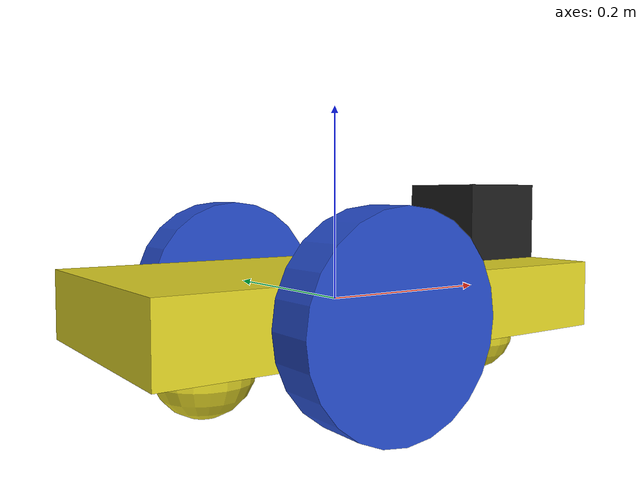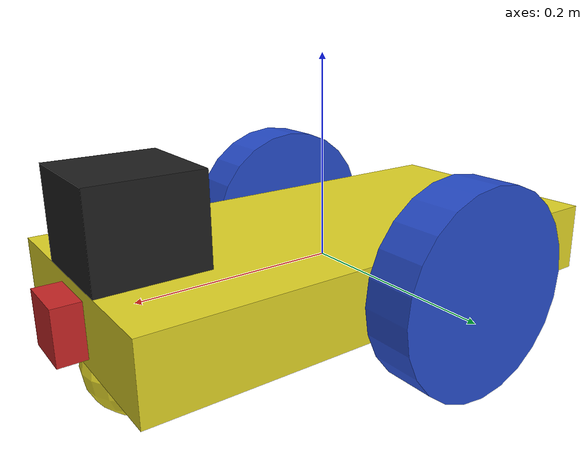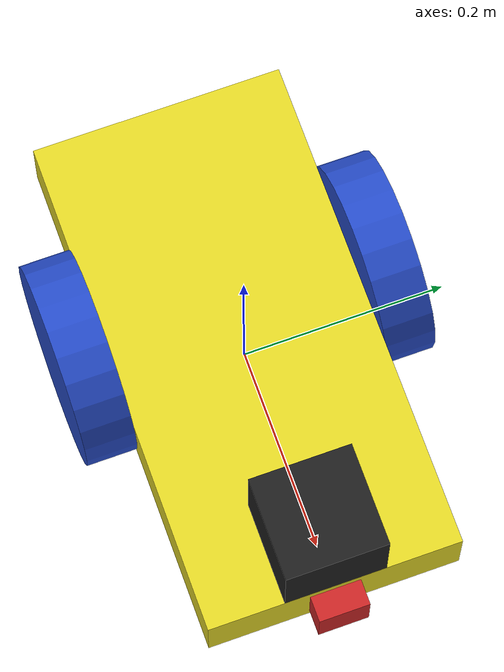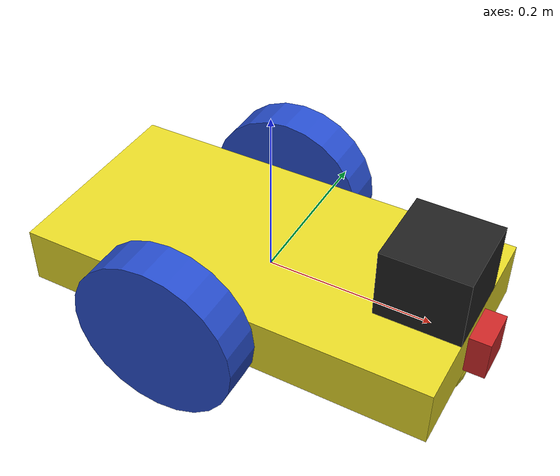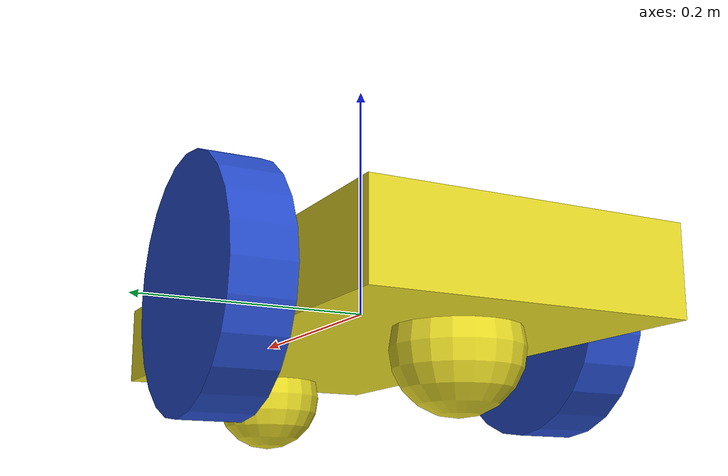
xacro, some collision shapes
<?xml version="1.0" ?>

<robot name="my_robot" xmlns:xacro="https://www.ros.org/wiki/xacro" >
  <!--Import Plugins-->
  <xacro:include filename="$(find my_robot)/urdf/my_robot.gazebo" />

  <!--Link (robot_footprint)-->
  <link name="robot_footprint"></link>

  <!--Joint (robot_footprint)-->
  <joint name="robot_footprint_joint" type="fixed">
    <origin xyz="0 0 0" rpy="0 0 0" />
    <parent link="robot_footprint"/>
    <child link="chassis" />
  </joint>

  <!--Link (chasiss)-->
  <link name="chassis">
    <pose>0 0 0.1 0 0 0</pose>

    <inertial>
      <mass value="15.0"/>
      <origin xyz="0 0 0" rpy="0 0 0"/>
      <inertia
          ixx="0.08425" ixy="0" ixz="0"
          iyy="0.318625" iyz="0"
          izz="0.390625"
      />
    </inertial>

    <collision name='collision'>
      <origin xyz="0 0 0" rpy=" 0 0 0"/>
      <geometry>
        <box size=".4 .2 .1"/>
      </geometry>
    </collision>

    <collision name="chassis_collision">
      <geometry>
        <box size="0.5 0.25 0.07"/>
      </geometry>
    </collision>

    <visual name='chassis_visual'>
      <origin rpy="0 0 0" xyz="0 0 0"/>
      <geometry>
        <box size="0.5 0.25 0.07"/>
      </geometry>
    </visual>

    <!--back caster-->
    <collision name='back_caster_collision'>
      <origin xyz="-0.15 0 -0.05" rpy=" 0 0 0"/>
      <geometry>
        <sphere radius="0.0499"/>
      </geometry>
    </collision>

    <visual name='back_caster_visual'>
      <origin xyz="-0.15 0 -0.05" rpy=" 0 0 0"/>
      <geometry>
        <sphere radius="0.05"/>
      </geometry>
    </visual>

    <!--front caster-->
    <collision name="front_caster_collision">
      <origin xyz="0.35 0 -0.05" rpy=" 0 0 0"/>
      <geometry>
        <sphere radius="0.05"/>
      </geometry>
    </collision>

    <visual name="front_caster_visual">
      <origin xyz="0.2 0 -0.05" rpy=" 0 0 0"/>
      <geometry>
        <sphere radius="0.05"/>
      </geometry>
    </visual>
  </link>

  <!--Link (left_wheel)-->
  <link name='left_wheel'>
    <inertial>
      <mass value="5"/>
      <origin xyz="0 0 0" rpy="0 1.5707 1.5707" />
      <inertia
          ixx="0.01354166666" ixy="0" ixz="0"
          iyy="0.01354166666" iyz="0"
          izz="0.025"
      />
    </inertial>

    <collision name='left_wheel_collision'>
      <origin  xyz="0 0 0" rpy="0 1.5707 1.5707"/>
      <geometry>
        <cylinder length="0.05" radius="0.1"/>
      </geometry>
    </collision>

    <visual name='left_wheel_visual'>
      <origin xyz="0 0 0" rpy="0 1.5707 1.5707"/>
      <geometry>
        <cylinder length="0.05" radius="0.1"/>
      </geometry>
    </visual>

  </link>

  <!--Joint (left_wheel_hinge)-->
  <joint name="left_wheel_hinge" type="continuous">
    <origin xyz="-0.05 0.15 0" rpy="0 0 0"/>
    <child link="left_wheel" />
    <parent link="chassis"/>
    <axis xyz="0 1 0" rpy="0 0 0" />
    <limit effort="10000" velocity="1000"/>
    <joint_properties damping="1.0" friction="1.0" />
  </joint>

  <!--Link (right_wheel)-->
  <link name="right_wheel">
    <inertial>
      <origin xyz="0 0 0" rpy="0 1.5707 1.5707" />
      <mass value="5"/>
      <inertia
          ixx="0.01354166666" ixy="0" ixz="0"
          iyy="0.01354166666" iyz="0"
          izz="0.025"
      />
    </inertial>

    <collision name="right_wheel_collision">
      <origin xyz="0 0 0" rpy="0 1.5707 1.5707"/>
      <geometry>
        <cylinder length="0.05" radius="0.1"/>
      </geometry>
    </collision>

    <visual name="right_wheel_visual">
      <origin xyz="0 0 0" rpy="0 1.5707 1.5707"/>
      <geometry>
        <cylinder length="0.05" radius="0.1"/>
      </geometry>
    </visual>
  </link>

  <!--Joint (right_wheel_hinge)-->
  <joint name="right_wheel_hinge" type="continuous">
    <origin xyz="-0.05 -0.15 0" rpy="0 0 0"/>
    <child link="right_wheel" />
    <parent link="chassis"/>
    <axis rpy="0 0 0" xyz="0 1 0"/>
    <limit effort="10000" velocity="1000"/>
    <joint_properties damping="1.0" friction="1.0" />
  </joint>

  <!--Link (camera)-->
  <link name='camera'>
    <inertial>
      <origin xyz="0 0 0" rpy="0 0 0"/>
      <mass value="0.1"/>
      <box_inertia m="0.1" x="0.05" y="0.05" z="0.05"/>
      <inertia
          ixx="1e-6" ixy="0" ixz="0"
          iyy="1e-6" iyz="0"
          izz="1e-6"
      />
    </inertial>

    <visual name='camera_visual'>
      <origin xyz="0 0 0" rpy="0 0 0"/>
      <geometry>
        <box size=".05 .05 .05"/>
      </geometry>
    </visual>

    <collision name='camera_collision'>
      <origin xyz="0 0 0" rpy="0 0 0"/>
      <geometry>
        <box size=".05 .05 .05"/>
      </geometry>
    </collision>
  </link>

  <!--Joint (camera)-->
  <joint type="fixed" name="camera_joint">
    <origin xyz="0.25 0 0" rpy="0 0 0"/>
    <child link="camera"/>
    <parent link="chassis"/>
    <axis xyz="0 1 0"/>
  </joint>

  <!--Links (hokuyo)-->
  <link name='hokuyo'>
    <inertial>
      <origin xyz="0 0 0" rpy="0 0 0"/>
      <mass value="1e-5"/>
      <inertia
          ixx="1e-6" ixy="0" ixz="0"
          iyy="1e-6" iyz="0"
          izz="1e-6"
      />
    </inertial>

    <visual name='hokuyo_visual'>
      <origin xyz="0 0 0" rpy="0 0 0"/>
      <geometry>
        <mesh filename="package://my_robot/meshes/hokuyo.dae"/>
      </geometry>
    </visual>

    <collision name='hokuyo_collision'>
      <origin xyz="0 0 0" rpy="0 0 0"/>
      <geometry>
        <box size=".1 .1 .1"/>
      </geometry>
    </collision>
  </link>

  <!--Joint (hokuyo)-->
  <joint type="fixed" name="hokuyo_joint">
    <origin xyz="0.2 0 .07" rpy="0 0 0"/>
    <child link="hokuyo"/>
    <parent link="chassis"/>
    <axis xyz="0 1 0"/>
  </joint>

  <!--give your robot some color-->
  <gazebo reference="chassis">
    <material>Gazebo/Yellow</material>
  </gazebo>

  <gazebo reference="left_wheel">
    <material>Gazebo/Blue</material>
  </gazebo>

  <gazebo reference="right_wheel">
    <material>Gazebo/Blue</material>
  </gazebo>

  <gazebo reference="camera">
    <material>Gazebo/Red</material>
  </gazebo>

  <gazebo reference="hokuyo">
    <material>Gazebo/Black</material>
  </gazebo>

</robot>
